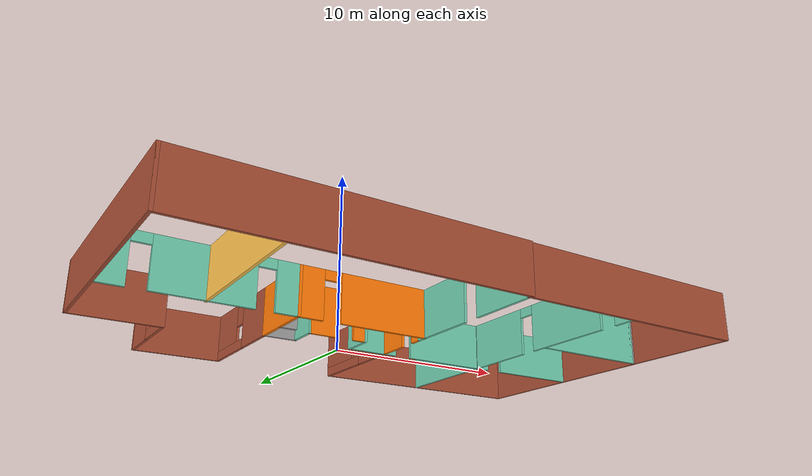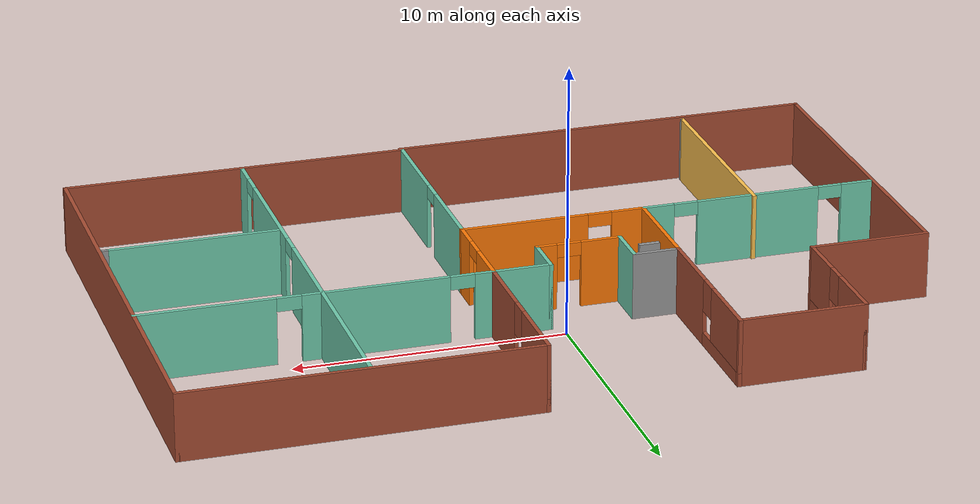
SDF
<?xml version='1.0'?>
<sdf version='1.6'>
  <model name='BuildingModel'>
    <pose frame=''>1.045 -3.37 0 0 -0 0</pose>
    <link name='Door_1'>
      <collision name='Door_1_Collision'>
        <geometry>
          <box>
            <size>0.9 0.17 2</size>
          </box>
        </geometry>
        <pose frame=''>0 0 1 0 -0 0</pose>
      </collision>
      <visual name='Door_1_Visual'>
        <pose frame=''>0 0 1 0 -0 0</pose>
        <geometry>
          <box>
            <size>0.9 0.17 2</size>
          </box>
        </geometry>
        <material>
          <script>
            <uri>file://media/materials/scripts/gazebo.material</uri>
            <name>Gazebo/Grey</name>
          </script>
        </material>
      </visual>
      <pose frame=''>-4.96747 0.940666 0 0 -0 0</pose>
    </link>
    <link name='Wall_0'>
      <collision name='Wall_0_Collision'>
        <geometry>
          <box>
            <size>1.75 0.15 2.5</size>
          </box>
        </geometry>
        <pose frame=''>0 0 1.25 0 -0 0</pose>
      </collision>
      <visual name='Wall_0_Visual'>
        <pose frame=''>0 0 1.25 0 -0 0</pose>
        <geometry>
          <box>
            <size>1.75 0.15 2.5</size>
          </box>
        </geometry>
        <material>
          <script>
            <uri>file://media/materials/scripts/gazebo.material</uri>
            <name>Gazebo/Grey</name>
          </script>
          <ambient>1 1 1 1</ambient>
        </material>
        <meta>
          <layer>0</layer>
        </meta>
      </visual>
      <pose frame=''>-4.525 2.75 0 0 -0 0</pose>
    </link>
    <link name='Wall_1'>
      <collision name='Wall_1_Collision'>
        <geometry>
          <box>
            <size>1.75 0.15 2.5</size>
          </box>
        </geometry>
        <pose frame=''>0 0 1.25 0 -0 0</pose>
      </collision>
      <visual name='Wall_1_Visual'>
        <pose frame=''>0 0 1.25 0 -0 0</pose>
        <geometry>
          <box>
            <size>1.75 0.15 2.5</size>
          </box>
        </geometry>
        <material>
          <script>
            <uri>file://media/materials/scripts/gazebo.material</uri>
            <name>Gazebo/Grey</name>
          </script>
          <ambient>0.435294 0.796078 0.67451 1</ambient>
        </material>
        <meta>
          <layer>0</layer>
        </meta>
      </visual>
      <pose frame=''>-3.725 1.95 0 0 0 -1.5708</pose>
    </link>
    <link name='Wall_10'>
      <collision name='Wall_10_Collision'>
        <geometry>
          <box>
            <size>13 0.15 2.5</size>
          </box>
        </geometry>
        <pose frame=''>0 0 1.25 0 -0 0</pose>
      </collision>
      <visual name='Wall_10_Visual'>
        <pose frame=''>0 0 1.25 0 -0 0</pose>
        <geometry>
          <box>
            <size>13 0.15 2.5</size>
          </box>
        </geometry>
        <material>
          <script>
            <uri>file://media/materials/scripts/gazebo.material</uri>
            <name>Gazebo/Bricks</name>
          </script>
          <ambient>1 1 1 1</ambient>
        </material>
        <meta>
          <layer>0</layer>
        </meta>
      </visual>
      <pose frame=''>7.9 9.1 0 0 -0 0</pose>
    </link>
    <link name='Wall_11'>
      <collision name='Wall_11_Collision'>
        <geometry>
          <box>
            <size>18.25 0.15 2.5</size>
          </box>
        </geometry>
        <pose frame=''>0 0 1.25 0 -0 0</pose>
      </collision>
      <visual name='Wall_11_Visual'>
        <pose frame=''>0 0 1.25 0 -0 0</pose>
        <geometry>
          <box>
            <size>18.25 0.15 2.5</size>
          </box>
        </geometry>
        <material>
          <script>
            <uri>file://media/materials/scripts/gazebo.material</uri>
            <name>Gazebo/Bricks</name>
          </script>
          <ambient>1 1 1 1</ambient>
        </material>
        <meta>
          <layer>0</layer>
        </meta>
      </visual>
      <pose frame=''>14.325 0.05 0 0 0 -1.5708</pose>
    </link>
    <link name='Wall_19'>
      <collision name='Wall_19_Collision'>
        <geometry>
          <box>
            <size>13 0.15 2.5</size>
          </box>
        </geometry>
        <pose frame=''>0 0 1.25 0 -0 0</pose>
      </collision>
      <visual name='Wall_19_Visual'>
        <pose frame=''>0 0 1.25 0 -0 0</pose>
        <geometry>
          <box>
            <size>13 0.15 2.5</size>
          </box>
        </geometry>
        <material>
          <script>
            <uri>file://media/materials/scripts/gazebo.material</uri>
            <name>Gazebo/Bricks</name>
          </script>
          <ambient>1 1 1 1</ambient>
        </material>
        <meta>
          <layer>0</layer>
        </meta>
      </visual>
      <pose frame=''>7.9 -9 0 0 -0 3.14159</pose>
    </link>
    <link name='Wall_2'>
      <pose frame=''>-2.175 1.15 0 0 -0 0</pose>
      <visual name='Wall_2_Visual_0'>
        <pose frame=''>-0.8525 0 1.25 0 -0 0</pose>
        <geometry>
          <box>
            <size>1.545 0.15 2.5</size>
          </box>
        </geometry>
        <material>
          <script>
            <uri>file://media/materials/scripts/gazebo.material</uri>
            <name>Gazebo/Grey</name>
          </script>
          <ambient>0.996078 0.47451 0.0196078 1</ambient>
        </material>
        <meta>
          <layer>0</layer>
        </meta>
      </visual>
      <collision name='Wall_2_Collision_0'>
        <geometry>
          <box>
            <size>1.545 0.15 2.5</size>
          </box>
        </geometry>
        <pose frame=''>-0.8525 0 1.25 0 -0 0</pose>
      </collision>
      <visual name='Wall_2_Visual_1'>
        <pose frame=''>1.2225 0 1.25 0 -0 0</pose>
        <geometry>
          <box>
            <size>0.805 0.15 2.5</size>
          </box>
        </geometry>
        <material>
          <script>
            <uri>file://media/materials/scripts/gazebo.material</uri>
            <name>Gazebo/Grey</name>
          </script>
          <ambient>0.996078 0.47451 0.0196078 1</ambient>
        </material>
        <meta>
          <layer>0</layer>
        </meta>
      </visual>
      <collision name='Wall_2_Collision_1'>
        <geometry>
          <box>
            <size>0.805 0.15 2.5</size>
          </box>
        </geometry>
        <pose frame=''>1.2225 0 1.25 0 -0 0</pose>
      </collision>
      <visual name='Wall_2_Visual_2'>
        <pose frame=''>0.37 0 2.25 0 -0 0</pose>
        <geometry>
          <box>
            <size>0.9 0.15 0.5</size>
          </box>
        </geometry>
        <material>
          <script>
            <uri>file://media/materials/scripts/gazebo.material</uri>
            <name>Gazebo/Grey</name>
          </script>
          <ambient>0.996078 0.47451 0.0196078 1</ambient>
        </material>
        <meta>
          <layer>0</layer>
        </meta>
      </visual>
      <collision name='Wall_2_Collision_2'>
        <geometry>
          <box>
            <size>0.9 0.15 0.5</size>
          </box>
        </geometry>
        <pose frame=''>0.37 0 2.25 0 -0 0</pose>
      </collision>
    </link>
    <link name='Wall_20'>
      <pose frame=''>1.475 -4.825 0 0 -0 1.5708</pose>
      <visual name='Wall_20_Visual_0'>
        <pose frame=''>-2.41243 0 1.25 0 -0 0</pose>
        <geometry>
          <box>
            <size>3.67514 0.15 2.5</size>
          </box>
        </geometry>
        <material>
          <script>
            <uri>file://media/materials/scripts/gazebo.material</uri>
            <name>Gazebo/Grey</name>
          </script>
          <ambient>0.435294 0.796078 0.67451 1</ambient>
        </material>
        <meta>
          <layer>0</layer>
        </meta>
      </visual>
      <collision name='Wall_20_Collision_0'>
        <geometry>
          <box>
            <size>3.67514 0.15 2.5</size>
          </box>
        </geometry>
        <pose frame=''>-2.41243 0 1.25 0 -0 0</pose>
      </collision>
      <visual name='Wall_20_Visual_1'>
        <pose frame=''>2.28757 0 1.25 0 -0 0</pose>
        <geometry>
          <box>
            <size>3.92486 0.15 2.5</size>
          </box>
        </geometry>
        <material>
          <script>
            <uri>file://media/materials/scripts/gazebo.material</uri>
            <name>Gazebo/Grey</name>
          </script>
          <ambient>0.435294 0.796078 0.67451 1</ambient>
        </material>
        <meta>
          <layer>0</layer>
        </meta>
      </visual>
      <collision name='Wall_20_Collision_1'>
        <geometry>
          <box>
            <size>3.92486 0.15 2.5</size>
          </box>
        </geometry>
        <pose frame=''>2.28757 0 1.25 0 -0 0</pose>
      </collision>
      <visual name='Wall_20_Visual_2'>
        <pose frame=''>-0.12486 0 2.25 0 -0 0</pose>
        <geometry>
          <box>
            <size>0.9 0.15 0.5</size>
          </box>
        </geometry>
        <material>
          <script>
            <uri>file://media/materials/scripts/gazebo.material</uri>
            <name>Gazebo/Grey</name>
          </script>
          <ambient>0.435294 0.796078 0.67451 1</ambient>
        </material>
        <meta>
          <layer>0</layer>
        </meta>
      </visual>
      <collision name='Wall_20_Collision_2'>
        <geometry>
          <box>
            <size>0.9 0.15 0.5</size>
          </box>
        </geometry>
        <pose frame=''>-0.12486 0 2.25 0 -0 0</pose>
      </collision>
    </link>
    <link name='Wall_22'>
      <pose frame=''>-5.375 5.925 0 0 -0 1.5708</pose>
      <visual name='Wall_22_Visual_0'>
        <pose frame=''>-1.79645 0 1.25 0 -0 0</pose>
        <geometry>
          <box>
            <size>2.90711 0.15 2.5</size>
          </box>
        </geometry>
        <material>
          <script>
            <uri>file://media/materials/scripts/gazebo.material</uri>
            <name>Gazebo/Bricks</name>
          </script>
          <ambient>1 1 1 1</ambient>
        </material>
        <meta>
          <layer>0</layer>
        </meta>
      </visual>
      <collision name='Wall_22_Collision_0'>
        <geometry>
          <box>
            <size>2.90711 0.15 2.5</size>
          </box>
        </geometry>
        <pose frame=''>-1.79645 0 1.25 0 -0 0</pose>
      </collision>
      <visual name='Wall_22_Visual_1'>
        <pose frame=''>1.45355 0 0.25 0 -0 0</pose>
        <geometry>
          <box>
            <size>3.59289 0.15 0.5</size>
          </box>
        </geometry>
        <material>
          <script>
            <uri>file://media/materials/scripts/gazebo.material</uri>
            <name>Gazebo/Bricks</name>
          </script>
          <ambient>1 1 1 1</ambient>
        </material>
        <meta>
          <layer>0</layer>
        </meta>
      </visual>
      <collision name='Wall_22_Collision_1'>
        <geometry>
          <box>
            <size>3.59289 0.15 0.5</size>
          </box>
        </geometry>
        <pose frame=''>1.45355 0 0.25 0 -0 0</pose>
      </collision>
      <visual name='Wall_22_Visual_2'>
        <pose frame=''>1.85355 0 1.5 0 -0 0</pose>
        <geometry>
          <box>
            <size>2.79289 0.15 2</size>
          </box>
        </geometry>
        <material>
          <script>
            <uri>file://media/materials/scripts/gazebo.material</uri>
            <name>Gazebo/Bricks</name>
          </script>
          <ambient>1 1 1 1</ambient>
        </material>
        <meta>
          <layer>0</layer>
        </meta>
      </visual>
      <collision name='Wall_22_Collision_2'>
        <geometry>
          <box>
            <size>2.79289 0.15 2</size>
          </box>
        </geometry>
        <pose frame=''>1.85355 0 1.5 0 -0 0</pose>
      </collision>
      <visual name='Wall_22_Visual_3'>
        <pose frame=''>0.057106 0 1.9 0 -0 0</pose>
        <geometry>
          <box>
            <size>0.8 0.15 1.2</size>
          </box>
        </geometry>
        <material>
          <script>
            <uri>file://media/materials/scripts/gazebo.material</uri>
            <name>Gazebo/Bricks</name>
          </script>
          <ambient>1 1 1 1</ambient>
        </material>
        <meta>
          <layer>0</layer>
        </meta>
      </visual>
      <collision name='Wall_22_Collision_3'>
        <geometry>
          <box>
            <size>0.8 0.15 1.2</size>
          </box>
        </geometry>
        <pose frame=''>0.057106 0 1.9 0 -0 0</pose>
      </collision>
    </link>
    <link name='Wall_23'>
      <collision name='Wall_23_Collision'>
        <geometry>
          <box>
            <size>4.75 0.15 2.5</size>
          </box>
        </geometry>
        <pose frame=''>0 0 1.25 0 -0 0</pose>
      </collision>
      <visual name='Wall_23_Visual'>
        <pose frame=''>0 0 1.25 0 -0 0</pose>
        <geometry>
          <box>
            <size>4.75 0.15 2.5</size>
          </box>
        </geometry>
        <material>
          <script>
            <uri>file://media/materials/scripts/gazebo.material</uri>
            <name>Gazebo/Bricks</name>
          </script>
          <ambient>1 1 1 1</ambient>
        </material>
        <meta>
          <layer>0</layer>
        </meta>
      </visual>
      <pose frame=''>-7.675 9.1 0 0 -0 3.14159</pose>
    </link>
    <link name='Wall_24'>
      <pose frame=''>-9.975 6.55 0 0 0 -1.5708</pose>
      <visual name='Wall_24_Visual_0'>
        <pose frame=''>-1.38776 0 1.25 0 -0 0</pose>
        <geometry>
          <box>
            <size>2.47449 0.15 2.5</size>
          </box>
        </geometry>
        <material>
          <script>
            <uri>file://media/materials/scripts/gazebo.material</uri>
            <name>Gazebo/Bricks</name>
          </script>
          <ambient>1 1 1 1</ambient>
        </material>
        <meta>
          <layer>0</layer>
        </meta>
      </visual>
      <collision name='Wall_24_Collision_0'>
        <geometry>
          <box>
            <size>2.47449 0.15 2.5</size>
          </box>
        </geometry>
        <pose frame=''>-1.38776 0 1.25 0 -0 0</pose>
      </collision>
      <visual name='Wall_24_Visual_1'>
        <pose frame=''>1.23724 0 0.25 0 -0 0</pose>
        <geometry>
          <box>
            <size>2.77551 0.15 0.5</size>
          </box>
        </geometry>
        <material>
          <script>
            <uri>file://media/materials/scripts/gazebo.material</uri>
            <name>Gazebo/Bricks</name>
          </script>
          <ambient>1 1 1 1</ambient>
        </material>
        <meta>
          <layer>0</layer>
        </meta>
      </visual>
      <collision name='Wall_24_Collision_1'>
        <geometry>
          <box>
            <size>2.77551 0.15 0.5</size>
          </box>
        </geometry>
        <pose frame=''>1.23724 0 0.25 0 -0 0</pose>
      </collision>
      <visual name='Wall_24_Visual_2'>
        <pose frame=''>1.63724 0 1.5 0 -0 0</pose>
        <geometry>
          <box>
            <size>1.97551 0.15 2</size>
          </box>
        </geometry>
        <material>
          <script>
            <uri>file://media/materials/scripts/gazebo.material</uri>
            <name>Gazebo/Bricks</name>
          </script>
          <ambient>1 1 1 1</ambient>
        </material>
        <meta>
          <layer>0</layer>
        </meta>
      </visual>
      <collision name='Wall_24_Collision_2'>
        <geometry>
          <box>
            <size>1.97551 0.15 2</size>
          </box>
        </geometry>
        <pose frame=''>1.63724 0 1.5 0 -0 0</pose>
      </collision>
      <visual name='Wall_24_Visual_3'>
        <pose frame=''>0.249487 0 1.9 0 -0 0</pose>
        <geometry>
          <box>
            <size>0.8 0.15 1.2</size>
          </box>
        </geometry>
        <material>
          <script>
            <uri>file://media/materials/scripts/gazebo.material</uri>
            <name>Gazebo/Bricks</name>
          </script>
          <ambient>1 1 1 1</ambient>
        </material>
        <meta>
          <layer>0</layer>
        </meta>
      </visual>
      <collision name='Wall_24_Collision_3'>
        <geometry>
          <box>
            <size>0.8 0.15 1.2</size>
          </box>
        </geometry>
        <pose frame=''>0.249487 0 1.9 0 -0 0</pose>
      </collision>
    </link>
    <link name='Wall_25'>
      <collision name='Wall_25_Collision'>
        <geometry>
          <box>
            <size>4.5 0.15 2.5</size>
          </box>
        </geometry>
        <pose frame=''>0 0 1.25 0 -0 0</pose>
      </collision>
      <visual name='Wall_25_Visual'>
        <pose frame=''>0 0 1.25 0 -0 0</pose>
        <geometry>
          <box>
            <size>4.5 0.15 2.5</size>
          </box>
        </geometry>
        <material>
          <script>
            <uri>file://media/materials/scripts/gazebo.material</uri>
            <name>Gazebo/Bricks</name>
          </script>
          <ambient>1 1 1 1</ambient>
        </material>
        <meta>
          <layer>0</layer>
        </meta>
      </visual>
      <pose frame=''>-12.15 4 0 0 -0 3.14159</pose>
    </link>
    <link name='Wall_26'>
      <collision name='Wall_26_Collision'>
        <geometry>
          <box>
            <size>13.25 0.15 2.5</size>
          </box>
        </geometry>
        <pose frame=''>0 0 1.25 0 -0 0</pose>
      </collision>
      <visual name='Wall_26_Visual'>
        <pose frame=''>0 0 1.25 0 -0 0</pose>
        <geometry>
          <box>
            <size>13.25 0.15 2.5</size>
          </box>
        </geometry>
        <material>
          <script>
            <uri>file://media/materials/scripts/gazebo.material</uri>
            <name>Gazebo/Bricks</name>
          </script>
          <ambient>1 1 1 1</ambient>
        </material>
        <meta>
          <layer>0</layer>
        </meta>
      </visual>
      <pose frame=''>-14.325 -2.55 0 0 0 -1.5708</pose>
    </link>
    <link name='Wall_27'>
      <collision name='Wall_27_Collision'>
        <geometry>
          <box>
            <size>16 0.15 2.5</size>
          </box>
        </geometry>
        <pose frame=''>0 0 1.25 0 -0 0</pose>
      </collision>
      <visual name='Wall_27_Visual'>
        <pose frame=''>0 0 1.25 0 -0 0</pose>
        <geometry>
          <box>
            <size>16 0.15 2.5</size>
          </box>
        </geometry>
        <material>
          <script>
            <uri>file://media/materials/scripts/gazebo.material</uri>
            <name>Gazebo/Bricks</name>
          </script>
          <ambient>1 1 1 1</ambient>
        </material>
        <meta>
          <layer>0</layer>
        </meta>
      </visual>
      <pose frame=''>-6.4 -9.1 0 0 -0 0</pose>
    </link>
    <link name='Wall_29'>
      <pose frame=''>7.9 2.75 0 0 -0 0</pose>
      <visual name='Wall_29_Visual_0'>
        <pose frame=''>-6.11891 0 1.25 0 -0 0</pose>
        <geometry>
          <box>
            <size>0.762174 0.15 2.5</size>
          </box>
        </geometry>
        <material>
          <script>
            <uri>file://media/materials/scripts/gazebo.material</uri>
            <name>Gazebo/Grey</name>
          </script>
          <ambient>0.435294 0.796078 0.67451 1</ambient>
        </material>
        <meta>
          <layer>0</layer>
        </meta>
      </visual>
      <collision name='Wall_29_Collision_0'>
        <geometry>
          <box>
            <size>0.762174 0.15 2.5</size>
          </box>
        </geometry>
        <pose frame=''>-6.11891 0 1.25 0 -0 0</pose>
      </collision>
      <visual name='Wall_29_Visual_1'>
        <pose frame=''>-2.16263 0 1.25 0 -0 0</pose>
        <geometry>
          <box>
            <size>5.35039 0.15 2.5</size>
          </box>
        </geometry>
        <material>
          <script>
            <uri>file://media/materials/scripts/gazebo.material</uri>
            <name>Gazebo/Grey</name>
          </script>
          <ambient>0.435294 0.796078 0.67451 1</ambient>
        </material>
        <meta>
          <layer>0</layer>
        </meta>
      </visual>
      <collision name='Wall_29_Collision_1'>
        <geometry>
          <box>
            <size>5.35039 0.15 2.5</size>
          </box>
        </geometry>
        <pose frame=''>-2.16263 0 1.25 0 -0 0</pose>
      </collision>
      <visual name='Wall_29_Visual_2'>
        <pose frame=''>3.95628 0 1.25 0 -0 0</pose>
        <geometry>
          <box>
            <size>5.08744 0.15 2.5</size>
          </box>
        </geometry>
        <material>
          <script>
            <uri>file://media/materials/scripts/gazebo.material</uri>
            <name>Gazebo/Grey</name>
          </script>
          <ambient>0.435294 0.796078 0.67451 1</ambient>
        </material>
        <meta>
          <layer>0</layer>
        </meta>
      </visual>
      <collision name='Wall_29_Collision_2'>
        <geometry>
          <box>
            <size>5.08744 0.15 2.5</size>
          </box>
        </geometry>
        <pose frame=''>3.95628 0 1.25 0 -0 0</pose>
      </collision>
      <visual name='Wall_29_Visual_3'>
        <pose frame=''>-5.28783 0 2.25 0 -0 0</pose>
        <geometry>
          <box>
            <size>0.9 0.15 0.5</size>
          </box>
        </geometry>
        <material>
          <script>
            <uri>file://media/materials/scripts/gazebo.material</uri>
            <name>Gazebo/Grey</name>
          </script>
          <ambient>0.435294 0.796078 0.67451 1</ambient>
        </material>
        <meta>
          <layer>0</layer>
        </meta>
      </visual>
      <collision name='Wall_29_Collision_3'>
        <geometry>
          <box>
            <size>0.9 0.15 0.5</size>
          </box>
        </geometry>
        <pose frame=''>-5.28783 0 2.25 0 -0 0</pose>
      </collision>
      <visual name='Wall_29_Visual_4'>
        <pose frame=''>0.962561 0 2.25 0 -0 0</pose>
        <geometry>
          <box>
            <size>0.9 0.15 0.5</size>
          </box>
        </geometry>
        <material>
          <script>
            <uri>file://media/materials/scripts/gazebo.material</uri>
            <name>Gazebo/Grey</name>
          </script>
          <ambient>0.435294 0.796078 0.67451 1</ambient>
        </material>
        <meta>
          <layer>0</layer>
        </meta>
      </visual>
      <collision name='Wall_29_Collision_4'>
        <geometry>
          <box>
            <size>0.9 0.15 0.5</size>
          </box>
        </geometry>
        <pose frame=''>0.962561 0 2.25 0 -0 0</pose>
      </collision>
    </link>
    <link name='Wall_3'>
      <collision name='Wall_3_Collision'>
        <geometry>
          <box>
            <size>1.75 0.15 2.5</size>
          </box>
        </geometry>
        <pose frame=''>0 0 1.25 0 -0 0</pose>
      </collision>
      <visual name='Wall_3_Visual'>
        <pose frame=''>0 0 1.25 0 -0 0</pose>
        <geometry>
          <box>
            <size>1.75 0.15 2.5</size>
          </box>
        </geometry>
        <material>
          <script>
            <uri>file://media/materials/scripts/gazebo.material</uri>
            <name>Gazebo/Grey</name>
          </script>
          <ambient>0.435294 0.796078 0.67451 1</ambient>
        </material>
        <meta>
          <layer>0</layer>
        </meta>
      </visual>
      <pose frame=''>-0.625 1.95 0 0 -0 1.5708</pose>
    </link>
    <link name='Wall_31'>
      <collision name='Wall_31_Collision'>
        <geometry>
          <box>
            <size>6.5 0.15 2.5</size>
          </box>
        </geometry>
        <pose frame=''>0 0 1.25 0 -0 0</pose>
      </collision>
      <visual name='Wall_31_Visual'>
        <pose frame=''>0 0 1.25 0 -0 0</pose>
        <geometry>
          <box>
            <size>6.5 0.15 2.5</size>
          </box>
        </geometry>
        <material>
          <script>
            <uri>file://media/materials/scripts/gazebo.material</uri>
            <name>Gazebo/Grey</name>
          </script>
          <ambient>0.435294 0.796078 0.67451 1</ambient>
        </material>
        <meta>
          <layer>0</layer>
        </meta>
      </visual>
      <pose frame=''>7.66266 5.88504 0 0 0 -1.5708</pose>
    </link>
    <link name='Wall_32'>
      <pose frame=''>7.66266 -3.08996 0 0 0 -1.5708</pose>
      <visual name='Wall_32_Visual_0'>
        <pose frame=''>-3.84118 0 1.25 0 -0 0</pose>
        <geometry>
          <box>
            <size>4.06764 0.15 2.5</size>
          </box>
        </geometry>
        <material>
          <script>
            <uri>file://media/materials/scripts/gazebo.material</uri>
            <name>Gazebo/Grey</name>
          </script>
          <ambient>0.435294 0.796078 0.67451 1</ambient>
        </material>
        <meta>
          <layer>0</layer>
        </meta>
      </visual>
      <collision name='Wall_32_Collision_0'>
        <geometry>
          <box>
            <size>4.06764 0.15 2.5</size>
          </box>
        </geometry>
        <pose frame=''>-3.84118 0 1.25 0 -0 0</pose>
      </collision>
      <visual name='Wall_32_Visual_1'>
        <pose frame=''>1.51122 0 1.25 0 -0 0</pose>
        <geometry>
          <box>
            <size>4.83716 0.15 2.5</size>
          </box>
        </geometry>
        <material>
          <script>
            <uri>file://media/materials/scripts/gazebo.material</uri>
            <name>Gazebo/Grey</name>
          </script>
          <ambient>0.435294 0.796078 0.67451 1</ambient>
        </material>
        <meta>
          <layer>0</layer>
        </meta>
      </visual>
      <collision name='Wall_32_Collision_1'>
        <geometry>
          <box>
            <size>4.83716 0.15 2.5</size>
          </box>
        </geometry>
        <pose frame=''>1.51122 0 1.25 0 -0 0</pose>
      </collision>
      <visual name='Wall_32_Visual_2'>
        <pose frame=''>5.3524 0 1.25 0 -0 0</pose>
        <geometry>
          <box>
            <size>1.0452 0.15 2.5</size>
          </box>
        </geometry>
        <material>
          <script>
            <uri>file://media/materials/scripts/gazebo.material</uri>
            <name>Gazebo/Grey</name>
          </script>
          <ambient>0.435294 0.796078 0.67451 1</ambient>
        </material>
        <meta>
          <layer>0</layer>
        </meta>
      </visual>
      <collision name='Wall_32_Collision_2'>
        <geometry>
          <box>
            <size>1.0452 0.15 2.5</size>
          </box>
        </geometry>
        <pose frame=''>5.3524 0 1.25 0 -0 0</pose>
      </collision>
      <visual name='Wall_32_Visual_3'>
        <pose frame=''>-1.35736 0 2.25 0 -0 0</pose>
        <geometry>
          <box>
            <size>0.9 0.15 0.5</size>
          </box>
        </geometry>
        <material>
          <script>
            <uri>file://media/materials/scripts/gazebo.material</uri>
            <name>Gazebo/Grey</name>
          </script>
          <ambient>0.435294 0.796078 0.67451 1</ambient>
        </material>
        <meta>
          <layer>0</layer>
        </meta>
      </visual>
      <collision name='Wall_32_Collision_3'>
        <geometry>
          <box>
            <size>0.9 0.15 0.5</size>
          </box>
        </geometry>
        <pose frame=''>-1.35736 0 2.25 0 -0 0</pose>
      </collision>
      <visual name='Wall_32_Visual_4'>
        <pose frame=''>4.3798 0 2.25 0 -0 0</pose>
        <geometry>
          <box>
            <size>0.9 0.15 0.5</size>
          </box>
        </geometry>
        <material>
          <script>
            <uri>file://media/materials/scripts/gazebo.material</uri>
            <name>Gazebo/Grey</name>
          </script>
          <ambient>0.435294 0.796078 0.67451 1</ambient>
        </material>
        <meta>
          <layer>0</layer>
        </meta>
      </visual>
      <collision name='Wall_32_Collision_4'>
        <geometry>
          <box>
            <size>0.9 0.15 0.5</size>
          </box>
        </geometry>
        <pose frame=''>4.3798 0 2.25 0 -0 0</pose>
      </collision>
    </link>
    <link name='Wall_34'>
      <collision name='Wall_34_Collision'>
        <geometry>
          <box>
            <size>6.5 0.15 2.5</size>
          </box>
        </geometry>
        <pose frame=''>0 0 1.25 0 -0 0</pose>
      </collision>
      <visual name='Wall_34_Visual'>
        <pose frame=''>0 0 1.25 0 -0 0</pose>
        <geometry>
          <box>
            <size>6.5 0.15 2.5</size>
          </box>
        </geometry>
        <material>
          <script>
            <uri>file://media/materials/scripts/gazebo.material</uri>
            <name>Gazebo/Grey</name>
          </script>
          <ambient>0.435294 0.796078 0.67451 1</ambient>
        </material>
        <meta>
          <layer>0</layer>
        </meta>
      </visual>
      <pose frame=''>10.8907 -2.98635 0 0 -0 0</pose>
    </link>
    <link name='Wall_37'>
      <collision name='Wall_37_Collision'>
        <geometry>
          <box>
            <size>0.25 0.15 2.5</size>
          </box>
        </geometry>
        <pose frame=''>0 0 1.25 0 -0 0</pose>
      </collision>
      <visual name='Wall_37_Visual'>
        <pose frame=''>0 0 1.25 0 -0 0</pose>
        <geometry>
          <box>
            <size>0.25 0.15 2.5</size>
          </box>
        </geometry>
        <material>
          <script>
            <uri>file://media/materials/scripts/gazebo.material</uri>
            <name>Gazebo/Grey</name>
          </script>
          <ambient>1 1 1 1</ambient>
        </material>
        <meta>
          <layer>0</layer>
        </meta>
      </visual>
      <pose frame=''>14.1157 -2.98635 0 0 -0 0</pose>
    </link>
    <link name='Wall_39'>
      <pose frame=''>-9.8 -1.1 0 0 -0 3.14159</pose>
      <visual name='Wall_39_Visual_0'>
        <pose frame=''>-3.87394 0 1.25 0 -0 0</pose>
        <geometry>
          <box>
            <size>1.25212 0.15 2.5</size>
          </box>
        </geometry>
        <material>
          <script>
            <uri>file://media/materials/scripts/gazebo.material</uri>
            <name>Gazebo/Grey</name>
          </script>
          <ambient>0.435294 0.796078 0.67451 1</ambient>
        </material>
        <meta>
          <layer>0</layer>
        </meta>
      </visual>
      <collision name='Wall_39_Collision_0'>
        <geometry>
          <box>
            <size>1.25212 0.15 2.5</size>
          </box>
        </geometry>
        <pose frame=''>-3.87394 0 1.25 0 -0 0</pose>
      </collision>
      <visual name='Wall_39_Visual_1'>
        <pose frame=''>0.001124 0 1.25 0 -0 0</pose>
        <geometry>
          <box>
            <size>4.69801 0.15 2.5</size>
          </box>
        </geometry>
        <material>
          <script>
            <uri>file://media/materials/scripts/gazebo.material</uri>
            <name>Gazebo/Grey</name>
          </script>
          <ambient>0.435294 0.796078 0.67451 1</ambient>
        </material>
        <meta>
          <layer>0</layer>
        </meta>
      </visual>
      <collision name='Wall_39_Collision_1'>
        <geometry>
          <box>
            <size>4.69801 0.15 2.5</size>
          </box>
        </geometry>
        <pose frame=''>0.001124 0 1.25 0 -0 0</pose>
      </collision>
      <visual name='Wall_39_Visual_2'>
        <pose frame=''>3.87507 0 1.25 0 -0 0</pose>
        <geometry>
          <box>
            <size>1.24987 0.15 2.5</size>
          </box>
        </geometry>
        <material>
          <script>
            <uri>file://media/materials/scripts/gazebo.material</uri>
            <name>Gazebo/Grey</name>
          </script>
          <ambient>0.435294 0.796078 0.67451 1</ambient>
        </material>
        <meta>
          <layer>0</layer>
        </meta>
      </visual>
      <collision name='Wall_39_Collision_2'>
        <geometry>
          <box>
            <size>1.24987 0.15 2.5</size>
          </box>
        </geometry>
        <pose frame=''>3.87507 0 1.25 0 -0 0</pose>
      </collision>
      <visual name='Wall_39_Visual_3'>
        <pose frame=''>-2.79788 0 2.25 0 -0 0</pose>
        <geometry>
          <box>
            <size>0.9 0.15 0.5</size>
          </box>
        </geometry>
        <material>
          <script>
            <uri>file://media/materials/scripts/gazebo.material</uri>
            <name>Gazebo/Grey</name>
          </script>
          <ambient>0.435294 0.796078 0.67451 1</ambient>
        </material>
        <meta>
          <layer>0</layer>
        </meta>
      </visual>
      <collision name='Wall_39_Collision_3'>
        <geometry>
          <box>
            <size>0.9 0.15 0.5</size>
          </box>
        </geometry>
        <pose frame=''>-2.79788 0 2.25 0 -0 0</pose>
      </collision>
      <visual name='Wall_39_Visual_4'>
        <pose frame=''>2.80013 0 2.25 0 -0 0</pose>
        <geometry>
          <box>
            <size>0.9 0.15 0.5</size>
          </box>
        </geometry>
        <material>
          <script>
            <uri>file://media/materials/scripts/gazebo.material</uri>
            <name>Gazebo/Grey</name>
          </script>
          <ambient>0.435294 0.796078 0.67451 1</ambient>
        </material>
        <meta>
          <layer>0</layer>
        </meta>
      </visual>
      <collision name='Wall_39_Collision_4'>
        <geometry>
          <box>
            <size>0.9 0.15 0.5</size>
          </box>
        </geometry>
        <pose frame=''>2.80013 0 2.25 0 -0 0</pose>
      </collision>
    </link>
    <link name='Wall_4'>
      <collision name='Wall_4_Collision'>
        <geometry>
          <box>
            <size>2.25 0.15 2.5</size>
          </box>
        </geometry>
        <pose frame=''>0 0 1.25 0 -0 0</pose>
      </collision>
      <visual name='Wall_4_Visual'>
        <pose frame=''>0 0 1.25 0 -0 0</pose>
        <geometry>
          <box>
            <size>2.25 0.15 2.5</size>
          </box>
        </geometry>
        <material>
          <script>
            <uri>file://media/materials/scripts/gazebo.material</uri>
            <name>Gazebo/Grey</name>
          </script>
          <ambient>0.435294 0.796078 0.67451 1</ambient>
        </material>
        <meta>
          <layer>0</layer>
        </meta>
      </visual>
      <pose frame=''>0.425 2.75 0 0 -0 0</pose>
    </link>
    <link name='Wall_41'>
      <collision name='Wall_41_Collision'>
        <geometry>
          <box>
            <size>8 0.15 2.5</size>
          </box>
        </geometry>
        <pose frame=''>0 0 1.25 0 -0 0</pose>
      </collision>
      <visual name='Wall_41_Visual'>
        <pose frame=''>0 0 1.25 0 -0 0</pose>
        <geometry>
          <box>
            <size>8 0.15 2.5</size>
          </box>
        </geometry>
        <material>
          <script>
            <uri>file://media/materials/scripts/gazebo.material</uri>
            <name>Gazebo/Grey</name>
          </script>
          <ambient>1 0.764706 0.305882 1</ambient>
        </material>
        <meta>
          <layer>0</layer>
        </meta>
      </visual>
      <pose frame=''>-9.62405 -4.92312 0 0 0 -1.5708</pose>
    </link>
    <link name='Wall_42'>
      <collision name='Wall_42_Collision'>
        <geometry>
          <box>
            <size>0.15 0.15 2.5</size>
          </box>
        </geometry>
        <pose frame=''>0 0 1.25 0 -0 0</pose>
      </collision>
      <visual name='Wall_42_Visual'>
        <pose frame=''>0 0 1.25 0 -0 0</pose>
        <geometry>
          <box>
            <size>0.15 0.15 2.5</size>
          </box>
        </geometry>
        <material>
          <script>
            <uri>file://media/materials/scripts/gazebo.material</uri>
            <name>Gazebo/Grey</name>
          </script>
          <ambient>1 1 1 1</ambient>
        </material>
        <meta>
          <layer>0</layer>
        </meta>
      </visual>
      <pose frame=''>-9.62405 -8.84812 0 0 -0 0</pose>
    </link>
    <link name='Wall_43'>
      <collision name='Wall_43_Collision'>
        <geometry>
          <box>
            <size>0.15 0.15 2.5</size>
          </box>
        </geometry>
        <pose frame=''>0 0 1.25 0 -0 0</pose>
      </collision>
      <visual name='Wall_43_Visual'>
        <pose frame=''>0 0 1.25 0 -0 0</pose>
        <geometry>
          <box>
            <size>0.15 0.15 2.5</size>
          </box>
        </geometry>
        <material>
          <script>
            <uri>file://media/materials/scripts/gazebo.material</uri>
            <name>Gazebo/Grey</name>
          </script>
          <ambient>1 1 1 1</ambient>
        </material>
        <meta>
          <layer>0</layer>
        </meta>
      </visual>
      <pose frame=''>-9.62405 -8.84812 0 0 -0 0</pose>
    </link>
    <link name='Wall_5'>
      <pose frame=''>1.475 0.825 0 0 0 -1.5708</pose>
      <visual name='Wall_5_Visual_0'>
        <pose frame=''>-1.04403 0 1.25 0 -0 0</pose>
        <geometry>
          <box>
            <size>1.91194 0.15 2.5</size>
          </box>
        </geometry>
        <material>
          <script>
            <uri>file://media/materials/scripts/gazebo.material</uri>
            <name>Gazebo/Grey</name>
          </script>
          <ambient>0.996078 0.47451 0.0196078 1</ambient>
        </material>
        <meta>
          <layer>0</layer>
        </meta>
      </visual>
      <collision name='Wall_5_Collision_0'>
        <geometry>
          <box>
            <size>1.91194 0.15 2.5</size>
          </box>
        </geometry>
        <pose frame=''>-1.04403 0 1.25 0 -0 0</pose>
      </collision>
      <visual name='Wall_5_Visual_1'>
        <pose frame=''>1.40597 0 1.25 0 -0 0</pose>
        <geometry>
          <box>
            <size>1.18806 0.15 2.5</size>
          </box>
        </geometry>
        <material>
          <script>
            <uri>file://media/materials/scripts/gazebo.material</uri>
            <name>Gazebo/Grey</name>
          </script>
          <ambient>0.996078 0.47451 0.0196078 1</ambient>
        </material>
        <meta>
          <layer>0</layer>
        </meta>
      </visual>
      <collision name='Wall_5_Collision_1'>
        <geometry>
          <box>
            <size>1.18806 0.15 2.5</size>
          </box>
        </geometry>
        <pose frame=''>1.40597 0 1.25 0 -0 0</pose>
      </collision>
      <visual name='Wall_5_Visual_2'>
        <pose frame=''>0.361944 0 2.25 0 -0 0</pose>
        <geometry>
          <box>
            <size>0.9 0.15 0.5</size>
          </box>
        </geometry>
        <material>
          <script>
            <uri>file://media/materials/scripts/gazebo.material</uri>
            <name>Gazebo/Grey</name>
          </script>
          <ambient>0.996078 0.47451 0.0196078 1</ambient>
        </material>
        <meta>
          <layer>0</layer>
        </meta>
      </visual>
      <collision name='Wall_5_Collision_2'>
        <geometry>
          <box>
            <size>0.9 0.15 0.5</size>
          </box>
        </geometry>
        <pose frame=''>0.361944 0 2.25 0 -0 0</pose>
      </collision>
    </link>
    <link name='Wall_6'>
      <pose frame=''>-1.95 -1.1 0 0 -0 3.14159</pose>
      <visual name='Wall_6_Visual_0'>
        <pose frame=''>-1.09777 0 1.25 0 -0 0</pose>
        <geometry>
          <box>
            <size>4.80447 0.15 2.5</size>
          </box>
        </geometry>
        <material>
          <script>
            <uri>file://media/materials/scripts/gazebo.material</uri>
            <name>Gazebo/Grey</name>
          </script>
          <ambient>0.996078 0.47451 0.0196078 1</ambient>
        </material>
        <meta>
          <layer>0</layer>
        </meta>
      </visual>
      <collision name='Wall_6_Collision_0'>
        <geometry>
          <box>
            <size>4.80447 0.15 2.5</size>
          </box>
        </geometry>
        <pose frame=''>-1.09777 0 1.25 0 -0 0</pose>
      </collision>
      <visual name='Wall_6_Visual_1'>
        <pose frame=''>2.85223 0 1.25 0 -0 0</pose>
        <geometry>
          <box>
            <size>1.29553 0.15 2.5</size>
          </box>
        </geometry>
        <material>
          <script>
            <uri>file://media/materials/scripts/gazebo.material</uri>
            <name>Gazebo/Grey</name>
          </script>
          <ambient>0.996078 0.47451 0.0196078 1</ambient>
        </material>
        <meta>
          <layer>0</layer>
        </meta>
      </visual>
      <collision name='Wall_6_Collision_1'>
        <geometry>
          <box>
            <size>1.29553 0.15 2.5</size>
          </box>
        </geometry>
        <pose frame=''>2.85223 0 1.25 0 -0 0</pose>
      </collision>
      <visual name='Wall_6_Visual_2'>
        <pose frame=''>1.75447 0 2.25 0 -0 0</pose>
        <geometry>
          <box>
            <size>0.9 0.15 0.5</size>
          </box>
        </geometry>
        <material>
          <script>
            <uri>file://media/materials/scripts/gazebo.material</uri>
            <name>Gazebo/Grey</name>
          </script>
          <ambient>0.996078 0.47451 0.0196078 1</ambient>
        </material>
        <meta>
          <layer>0</layer>
        </meta>
      </visual>
      <collision name='Wall_6_Collision_2'>
        <geometry>
          <box>
            <size>0.9 0.15 0.5</size>
          </box>
        </geometry>
        <pose frame=''>1.75447 0 2.25 0 -0 0</pose>
      </collision>
    </link>
    <link name='Wall_7'>
      <collision name='Wall_7_Collision'>
        <geometry>
          <box>
            <size>4.00033 0.15 2.5</size>
          </box>
        </geometry>
        <pose frame=''>0 0 1.25 0 -0 0</pose>
      </collision>
      <visual name='Wall_7_Visual'>
        <pose frame=''>0 0 1.25 0 -0 0</pose>
        <geometry>
          <box>
            <size>4.00033 0.15 2.5</size>
          </box>
        </geometry>
        <material>
          <script>
            <uri>file://media/materials/scripts/gazebo.material</uri>
            <name>Gazebo/Grey</name>
          </script>
          <ambient>0.996078 0.47451 0.0196078 1</ambient>
        </material>
        <meta>
          <layer>0</layer>
        </meta>
      </visual>
      <pose frame=''>-5.375 0.825 0 0 -0 1.5708</pose>
    </link>
    <link name='Wall_9'>
      <pose frame=''>1.475 5.925 0 0 -0 1.5708</pose>
      <visual name='Wall_9_Visual_0'>
        <pose frame=''>-1.84952 0 1.25 0 -0 0</pose>
        <geometry>
          <box>
            <size>2.80097 0.15 2.5</size>
          </box>
        </geometry>
        <material>
          <script>
            <uri>file://media/materials/scripts/gazebo.material</uri>
            <name>Gazebo/Bricks</name>
          </script>
          <ambient>1 1 1 1</ambient>
        </material>
        <meta>
          <layer>0</layer>
        </meta>
      </visual>
      <collision name='Wall_9_Collision_0'>
        <geometry>
          <box>
            <size>2.80097 0.15 2.5</size>
          </box>
        </geometry>
        <pose frame=''>-1.84952 0 1.25 0 -0 0</pose>
      </collision>
      <visual name='Wall_9_Visual_1'>
        <pose frame=''>1.40048 0 0.25 0 -0 0</pose>
        <geometry>
          <box>
            <size>3.69903 0.15 0.5</size>
          </box>
        </geometry>
        <material>
          <script>
            <uri>file://media/materials/scripts/gazebo.material</uri>
            <name>Gazebo/Bricks</name>
          </script>
          <ambient>1 1 1 1</ambient>
        </material>
        <meta>
          <layer>0</layer>
        </meta>
      </visual>
      <collision name='Wall_9_Collision_1'>
        <geometry>
          <box>
            <size>3.69903 0.15 0.5</size>
          </box>
        </geometry>
        <pose frame=''>1.40048 0 0.25 0 -0 0</pose>
      </collision>
      <visual name='Wall_9_Visual_2'>
        <pose frame=''>1.80048 0 1.5 0 -0 0</pose>
        <geometry>
          <box>
            <size>2.89903 0.15 2</size>
          </box>
        </geometry>
        <material>
          <script>
            <uri>file://media/materials/scripts/gazebo.material</uri>
            <name>Gazebo/Bricks</name>
          </script>
          <ambient>1 1 1 1</ambient>
        </material>
        <meta>
          <layer>0</layer>
        </meta>
      </visual>
      <collision name='Wall_9_Collision_2'>
        <geometry>
          <box>
            <size>2.89903 0.15 2</size>
          </box>
        </geometry>
        <pose frame=''>1.80048 0 1.5 0 -0 0</pose>
      </collision>
      <visual name='Wall_9_Visual_3'>
        <pose frame=''>-0.04903 0 1.9 0 -0 0</pose>
        <geometry>
          <box>
            <size>0.8 0.15 1.2</size>
          </box>
        </geometry>
        <material>
          <script>
            <uri>file://media/materials/scripts/gazebo.material</uri>
            <name>Gazebo/Bricks</name>
          </script>
          <ambient>1 1 1 1</ambient>
        </material>
        <meta>
          <layer>0</layer>
        </meta>
      </visual>
      <collision name='Wall_9_Collision_3'>
        <geometry>
          <box>
            <size>0.8 0.15 1.2</size>
          </box>
        </geometry>
        <pose frame=''>-0.04903 0 1.9 0 -0 0</pose>
      </collision>
    </link>
    <static>1</static>
  </model>
</sdf>
